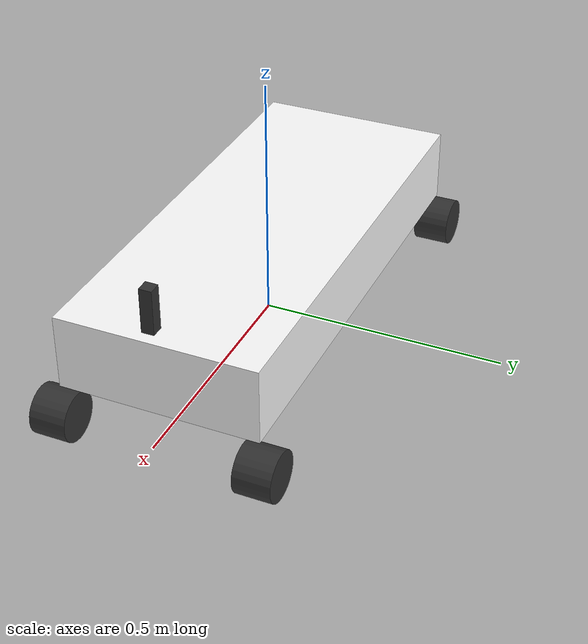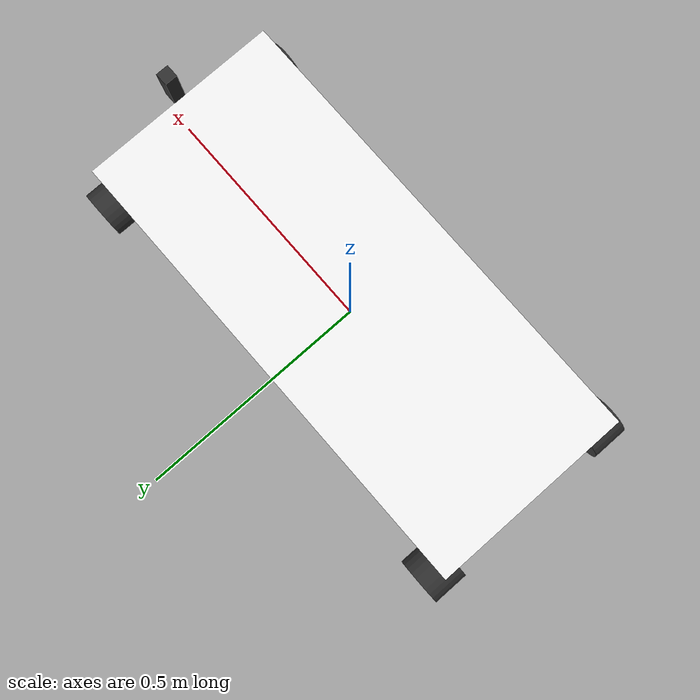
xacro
<?xml version="1.0"?>
<robot xmlns:xacro="http://www.ros.org/wiki/xacro" xmlns:gz="https://gazebosim.org" name="robot_3d">

    <xacro:property name="M_PI" value="3.1415926535897931" />

    <xacro:arg name="robot_name" default="robot_3d"/>
    <xacro:arg name="prefix" default=""/>
    <xacro:arg name="use_gazebo" default="false"/>

    <!-- Include components -->
    <xacro:include filename="../mech/robot_3d_base.urdf.xacro"/>
    <xacro:include filename="../mech/wheel.urdf.xacro"/>
    <xacro:include filename="../sensors/rgbd_camera.urdf.xacro"/>
    <xacro:include filename="../sensors/lidar.urdf.xacro"/>
    <xacro:include filename="../control/climberr.gazebo"/>

    <!-- Base frame -->
    <xacro:robot_3d_base prefix="$(arg prefix)"/>

    <!-- FRONT: Driven wheels (add joint type "continuous" or "revolute" and actuator/ros2_control) -->
    <xacro:wheel
      prefix="$(arg prefix)"
      side="front_left"
      driven="true"
      x_reflect="1"
      y_reflect="1"/>

    <xacro:wheel
      prefix="$(arg prefix)"
      side="front_right"
      driven="true"
      x_reflect="1"
      y_reflect="-1"/>

    <!-- REAR: Passive wheels (no actuator, joint can be fixed or continuous but not powered) -->
    <xacro:wheel
      prefix="$(arg prefix)"
      side="back_left"
      driven="true"
      x_reflect="-1"
      y_reflect="1"/>

    <xacro:wheel
      prefix="$(arg prefix)"
      side="back_right"
      driven="true"
      x_reflect="-1"
      y_reflect="-1"/>

    <!-- Sensors remain as-is -->
    <xacro:rgbd_camera
      prefix="$(arg prefix)"
      camera_name="cam_1"
      xyz_offset="0.105 0 0.03"
      rpy_offset="0 0 0"/>

    <xacro:lidar_sensor
      prefix="$(arg prefix)"
      parent="base_link"
      frame_id="laser_frame"
      xyz_offset="0 0 0.0825"
      rpy_offset="0 0 3.14"
      mesh_xyz_offset="0 0 0"
      mesh_rpy_offset="${-M_PI/2} 0 0"
      topic_name="scan"/>

    <!-- Gazebo friction for front wheels (powered) -->
    <gazebo reference='front_left_wheel_link'>
      <collision>
        <surface>
          <friction>
            <ode>
              <mu>1.5</mu>
              <mu2>0.0</mu2>
              <fdir1 gz:expressed_in="base_footprint">1 -1 0</fdir1>
            </ode>
          </friction>
        </surface>
      </collision>
    </gazebo>

    <gazebo reference='front_right_wheel_link'>
      <collision>
        <surface>
          <friction>
            <ode>
              <mu>1.5</mu>
              <mu2>0.0</mu2>
              <fdir1 gz:expressed_in="base_footprint">1 1 0</fdir1>
            </ode>
          </friction>
        </surface>
      </collision>
    </gazebo>

    <!-- Rear wheels: Lower friction or same as above (if needed) -->
    <gazebo reference='back_left_wheel_link'>
      <collision>
        <surface>
          <friction>
            <ode>
              <mu>1.5</mu>
              <mu2>0.0</mu2>
              <fdir1 gz:expressed_in="base_footprint">1 1 0</fdir1>
            </ode>
          </friction>
        </surface>
      </collision>
    </gazebo>
    <gazebo reference='back_right_wheel_link'>
      <collision>
        <surface>
          <friction>
            <ode>
              <mu>1.5</mu>
              <mu2>0.0</mu2>
              <fdir1 gz:expressed_in="base_footprint">1 -1 0</fdir1>
            </ode>
          </friction>
        </surface>
      </collision>
    </gazebo>

    <!-- Base link Gazebo settings -->
    <gazebo reference="base_link">
      <mu1>0.000002</mu1>
      <mu2>0.000002</mu2>
    </gazebo>
</robot>

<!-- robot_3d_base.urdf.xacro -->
<robot xmlns:xacro="http://www.ros.org/wiki/xacro">
<xacro:property name="total_width" value="0.5564" />
<xacro:property name="wheel_width" value="0.075" />
<xacro:property name="wheel_radius" value="0.05" />
<xacro:property name="total_height" value="0.2532" />
<xacro:property name="base_length" value="0.9528128146" />
<xacro:property name="centered_length" value="0.9528128146" />
<xacro:property name="base_x_offset" value="${(centered_length - base_length) / 2}" />
<xacro:property name="base_size_x" value="${base_length}" />
<xacro:property name="base_size_y" value="${total_width - (2 * wheel_width)}" />
<xacro:property name="base_size_z" value="${total_height - (2 * wheel_radius)}" />
<xacro:property name="base_mass" value="4.6" />

<xacro:macro name="robot_3d_base" params="prefix">
  <link name="${prefix}base_footprint"/>
  <link name="${prefix}base_link">
    <visual>
        <geometry>
            <box size="${base_size_x} ${base_size_y} ${base_size_z}"/>
        </geometry>
        <material name="white">
          <color rgba="1 1 1 1"/>
        </material>
        <origin xyz="${base_x_offset} 0 ${base_size_z/2 + wheel_radius/4}" rpy="0 0 0"/>
    </visual>
    <collision>
        <geometry>
            <box size="${base_size_x} ${base_size_y} ${base_size_z}"/>
        </geometry>
        <origin xyz="${base_x_offset} 0 ${base_size_z/2 + wheel_radius/4}" rpy="0 0 0"/>
    </collision>
    <inertial>
        <origin xyz="${base_x_offset} 0 ${base_size_z/2 + wheel_radius/4}" rpy="0 0 0"/>
        <mass value="${base_mass}"/>
        <inertia
            ixx="${(1/12) * base_mass * ((base_size_y * base_size_y) + (base_size_z * base_size_z))}" ixy="0.0" ixz="0.0"
            iyy="${(1/12) * base_mass * ((base_size_x * base_size_x) + (base_size_z * base_size_z))}" iyz="0.0"
            izz="${(1/12) * base_mass * ((base_size_x * base_size_x) + (base_size_y * base_size_y))}"/>
    </inertial>
  </link>
  <gazebo reference="${prefix}base_link">
    <visual>
        <material>
            <ambient>0 0.7 0 1</ambient>
            <diffuse>0 0.7 0 1</diffuse>
            <specular>0 0.7 0 1</specular>
        </material>
    </visual>
  </gazebo>
  <joint name="${prefix}base_joint" type="fixed">
    <parent link="${prefix}base_footprint"/>
    <child link="${prefix}base_link"/>
    <origin xyz="0 0 ${wheel_radius}" rpy="0 0 0"/>
  </joint>
</xacro:macro>
</robot>

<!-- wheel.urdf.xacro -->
<robot xmlns:xacro="http://www.ros.org/wiki/xacro">

  <xacro:property name="wheel_radius" value="0.05" />
  <xacro:property name="wheel_separation" value="0.4139" />
  <xacro:property name="wheel_width" value="0.075" />
  <xacro:property name="wheel_mass" value="9.1" />
  <xacro:property name="wheel_xoff" value="0.4764064073" />
  <xacro:property name="wheel_yoff" value="0" />

  <xacro:macro name="wheel" params="prefix side x_reflect y_reflect driven">
    <link name="${prefix}${side}_wheel_link">
      <visual>
        <origin xyz="0 0 0" rpy="${pi/2} 0 0"/>
        <geometry>
          <cylinder radius="${wheel_radius}" length="${wheel_width}"/>
        </geometry>
        <material name="dark_gray">
          <color rgba="0.2 0.2 0.2 1.0"/>
        </material>
      </visual>

      <collision>
        <origin xyz="0 0 0" rpy="${pi/2} 0 0"/>
        <geometry>
          <cylinder radius="${wheel_radius}" length="${wheel_width}"/>
        </geometry>
      </collision>

      <inertial>
        <origin xyz="0 0 0" rpy="0 0 0"/>
        <mass value="${wheel_mass}"/>
        <inertia
          ixx="${(wheel_mass/12.0) * (3*wheel_radius*wheel_radius + wheel_width*wheel_width)}" ixy="0" ixz="0"
          iyy="${(wheel_mass/2.0) * (wheel_radius*wheel_radius)}" iyz="0"
          izz="${(wheel_mass/12.0) * (3*wheel_radius*wheel_radius + wheel_width*wheel_width)}"/>
      </inertial>
    </link>

    <joint name="${prefix}${side}_wheel_joint" type="continuous">
      <axis xyz="0 1 0"/>
      <parent link="${prefix}base_link"/>
      <child link="${prefix}${side}_wheel_link"/>
      <origin xyz="${x_reflect*wheel_xoff} ${y_reflect*(wheel_separation/2+wheel_yoff)} ${-wheel_radius}" rpy="0 0 0"/>
    </joint>

    <gazebo reference="${prefix}${side}_wheel_link">
      <surface>
        <friction>
          <ode>
              <mu>1.0</mu>
              <mu2>0.0</mu2>
          </ode>
        </friction>
      </surface>
      <visual>
          <material>
              <ambient>0.2 0.2 0.2 1.0</ambient>
              <diffuse>0.2 0.2 0.2 1.0</diffuse>
              <specular>0.2 0.2 0.2 1.0</specular>
              <emissive>0.0 0.0 0.0 0.0</emissive>
          </material>
      </visual>
  </gazebo>

  </xacro:macro>
</robot>

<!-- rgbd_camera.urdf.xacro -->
<robot xmlns:xacro="http://www.ros.org/wiki/xacro">

  <xacro:property name="M_PI" value="3.1415926535897931" />

  <xacro:macro name="rgbd_camera" params="
    prefix:=''
    camera_name:='cam_1'
    parent:='base_link'
    xyz_offset:='0.4764064073 0 0.2407'
    rpy_offset:='0 -0.50 0'
    mesh_xyz_offset:='0 0 0'
    mesh_rpy_offset:='${M_PI/2} 0.0 ${M_PI/2}'
    collision_xyz_offset:='0 0 0'
    collision_rpy_offset:='0 0 0'
    inertial_xyz_offset:='0 0 0'
    inertial_rpy_offset:='0 0 0'
    optical_xyz_offset:='0 0 0'
    optical_rpy_offset:='${-M_PI/2} 0 ${-M_PI/2}'
    depth_frame_xyz_offset:='0 0 0'
    depth_frame_rpy_offset:='0 0 0'
    infra1_xyz_offset:='0 0 0'
    infra1_rpy_offset:='0 0 0'
    infra2_xyz_offset:='0 -0.05 0'
    infra2_rpy_offset:='0 0 0'
    color_xyz_offset:='0 0.015 0'
    color_rpy_offset:='0 0 0'
    cam_width:=0.090
    cam_height:=0.025
    cam_depth:=0.02505
    mass:=0.072
    ixx:=0.003881243
    ixy:=0.0
    ixz:=0.0
    iyy:=0.000498940
    iyz:=0.0
    izz:=0.003879257
    material_name:='aluminum'
    material_color:='0.2 0.2 0.2 1'
    horizontal_fov:=1.5184
    image_width:=424
    image_height:=240
    clip_near:=0.05
    clip_far:=1.5
    update_rate:=2
    always_on:=1
    visualize:=true
    enable_collision:=false">

    <link name="${prefix}${camera_name}_link">
      <visual>
        <origin xyz="${mesh_xyz_offset}" rpy="${mesh_rpy_offset}"/>
        <geometry>
          <box size="${cam_depth} ${cam_width} ${cam_height}"/>
        </geometry>
        <material name="${material_name}">
          <color rgba="${material_color}"/>
        </material>
      </visual>
      <xacro:if value="${enable_collision}">
        <collision>
          <origin xyz="${collision_xyz_offset}" rpy="${collision_rpy_offset}"/>
          <geometry>
            <box size="${cam_depth} ${cam_width} ${cam_height}"/>
          </geometry>
        </collision>
      </xacro:if>
      <inertial>
        <mass value="${mass}" />
        <origin xyz="${inertial_xyz_offset}" rpy="${inertial_rpy_offset}"/>
        <inertia ixx="${ixx}" ixy="${ixy}" ixz="${ixz}"
                 iyy="${iyy}" iyz="${iyz}" izz="${izz}" />
      </inertial>
    </link>

    <joint name="${prefix}${camera_name}_joint" type="fixed">
      <parent link="${prefix}${parent}"/>
      <child link="${prefix}${camera_name}_link" />
      <origin xyz="0.4764064073 0 0.2407" rpy="${rpy_offset}"/>
    </joint>

    <joint name="${prefix}${camera_name}_depth_joint" type="fixed">
      <origin xyz="${depth_frame_xyz_offset}" rpy="${depth_frame_rpy_offset}"/>
      <parent link="${prefix}${camera_name}_link"/>
      <child link="${prefix}${camera_name}_depth_frame" />
    </joint>
    <link name="${prefix}${camera_name}_depth_frame"/>

    <joint name="${prefix}${camera_name}_depth_optical_joint" type="fixed">
      <origin xyz="${optical_xyz_offset}" rpy="${optical_rpy_offset}" />
      <parent link="${prefix}${camera_name}_depth_frame" />
      <child link="${prefix}${camera_name}_depth_optical_frame" />
    </joint>
    <link name="${prefix}${camera_name}_depth_optical_frame"/>

    <joint name="${prefix}${camera_name}_infra1_joint" type="fixed">
      <origin xyz="${infra1_xyz_offset}" rpy="${infra1_rpy_offset}" />
      <parent link="${prefix}${camera_name}_link" />
      <child link="${prefix}${camera_name}_infra1_frame" />
    </joint>
    <link name="${prefix}${camera_name}_infra1_frame"/>

    <joint name="${prefix}${camera_name}_infra1_optical_joint" type="fixed">
      <origin xyz="${optical_xyz_offset}" rpy="${optical_rpy_offset}" />
      <parent link="${prefix}${camera_name}_infra1_frame" />
      <child link="${prefix}${camera_name}_infra1_optical_frame" />
    </joint>
    <link name="${prefix}${camera_name}_infra1_optical_frame"/>

    <joint name="${prefix}${camera_name}_infra2_joint" type="fixed">
      <origin xyz="${infra2_xyz_offset}" rpy="${infra2_rpy_offset}" />
      <parent link="${prefix}${camera_name}_link" />
      <child link="${prefix}${camera_name}_infra2_frame" />
    </joint>
    <link name="${prefix}${camera_name}_infra2_frame"/>

    <joint name="${prefix}${camera_name}_infra2_optical_joint" type="fixed">
      <origin xyz="${optical_xyz_offset}" rpy="${optical_rpy_offset}" />
      <parent link="${prefix}${camera_name}_infra2_frame" />
      <child link="${prefix}${camera_name}_infra2_optical_frame" />
    </joint>
    <link name="${prefix}${camera_name}_infra2_optical_frame"/>

    <joint name="${prefix}${camera_name}_color_joint" type="fixed">
      <origin xyz="${color_xyz_offset}" rpy="${color_rpy_offset}" />
      <parent link="${prefix}${camera_name}_link" />
      <child link="${prefix}${camera_name}_color_frame" />
    </joint>
    <link name="${prefix}${camera_name}_color_frame"/>

    <joint name="${prefix}${camera_name}_color_optical_joint" type="fixed">
      <origin xyz="${optical_xyz_offset}" rpy="${optical_rpy_offset}" />
      <parent link="${prefix}${camera_name}_color_frame" />
      <child link="${prefix}${camera_name}_color_optical_frame" />
    </joint>
    <link name="${prefix}${camera_name}_color_optical_frame"/>

    <gazebo reference="${prefix}${camera_name}_link">
      <sensor name="${prefix}${camera_name}" type="rgbd_camera">
        <camera>
          <horizontal_fov>${horizontal_fov}</horizontal_fov>
          <image>
            <width>${image_width}</width>
            <height>${image_height}</height>
          </image>
          <clip>
            <near>${clip_near}</near>
            <far>${clip_far}</far>
          </clip>
        </camera>
        <always_on>${always_on}</always_on>
        <gz_frame_id>${prefix}${camera_name}_link</gz_frame_id>
        <topic>${camera_name}</topic>
        <update_rate>${update_rate}</update_rate>
        <visualize>${visualize}</visualize>
      </sensor>
    </gazebo>

  </xacro:macro>
</robot>

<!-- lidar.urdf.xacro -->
<robot xmlns:xacro="http://www.ros.org/wiki/xacro">
  <xacro:property name="M_PI" value="3.1415926535897931" />

  <xacro:macro name="lidar_sensor" params="
    prefix:=''
    parent:='base_link'
    frame_id:='laser_frame'
    xyz_offset:='0 0 0.0825'
    rpy_offset:='0 0 0'
    mesh_xyz_offset:='0 0 0'
    mesh_rpy_offset:='${-M_PI/2} 0 0'
    mesh_scale:='0.001 0.001 0.001'
    collision_xyz_offset:='0 0 0'
    collision_rpy_offset:='0 0 0'
    inertial_xyz_offset:='0 0 0'
    inertial_rpy_offset:='0 0 0'
    lidar_width:=0.077
    lidar_height:=0.0398
    mass:=0.185
    material_name:='rplidar_black'
    material_color:='0.1 0.1 0.1 1'
    gazebo_material_ambient:='0.1 0.1 0.1 1'
    gazebo_material_diffuse:='0.1 0.1 0.1 1'
    gazebo_material_specular:='0.1 0.1 0.1 1'
    update_rate:=10
    ray_count:=720
    min_angle:='-3.14159'
    max_angle:='3.14159'
    min_range:='0.20'
    max_range:='30.0'
    range_resolution:='0.013'
    topic_name:='scan'
    always_on:=true
    visualize:=false
    enable_collision:=false">

    <xacro:property name="radius" value="${lidar_width/2}" />
    <xacro:property name="ixx_iyy" value="${(mass/12) * (3 * radius * radius + lidar_height * lidar_height)}" />
    <xacro:property name="izz" value="${(mass/2) * (radius * radius)}" />

    <link name="${prefix}${frame_id}">
      <visual>
        <origin xyz="${mesh_xyz_offset}" rpy="${mesh_rpy_offset}"/>
        <geometry>
          <cylinder radius="${lidar_width/2}" length="${lidar_height}"/>
        </geometry>
        <material name="${material_name}">
          <color rgba="${material_color}"/>
        </material>
      </visual>

      <xacro:if value="${enable_collision}">
        <collision>
          <origin xyz="${collision_xyz_offset}" rpy="${collision_rpy_offset}"/>
          <geometry>
            <cylinder radius="${lidar_width/2}" length="${lidar_height}"/>
          </geometry>
        </collision>
      </xacro:if>

      <inertial>
        <mass value="${mass}" />
        <origin xyz="${inertial_xyz_offset}" rpy="${inertial_rpy_offset}"/>
        <inertia
          ixx="${ixx_iyy}"
          ixy="0.0"
          ixz="0.0"
          iyy="${ixx_iyy}"
          iyz="0.0"
          izz="${izz}" />
      </inertial>
    </link>

    <joint name="${prefix}${frame_id}_joint" type="fixed">
      <parent link="${prefix}${parent}"/>
      <child link="${prefix}${frame_id}" />
      <origin xyz="${xyz_offset}" rpy="${rpy_offset}"/>
    </joint>

    <gazebo reference="${prefix}${frame_id}">
      <material>
        <ambient>${gazebo_material_ambient}</ambient>
        <diffuse>${gazebo_material_diffuse}</diffuse>
        <specular>${gazebo_material_specular}</specular>
      </material>
      <sensor name="${prefix}lidar_sensor" type="gpu_lidar">
        <topic>${topic_name}</topic>
        <update_rate>${update_rate}</update_rate>
        <always_on>${always_on}</always_on>
        <visualize>${visualize}</visualize>
        <ray>
          <scan>
            <horizontal>
              <samples>${ray_count}</samples>
              <resolution>1</resolution>
              <min_angle>${min_angle}</min_angle>
              <max_angle>${max_angle}</max_angle>
            </horizontal>
            <vertical>
              <samples>1</samples>
              <resolution>1</resolution>
              <min_angle>0</min_angle>
              <max_angle>0</max_angle>
            </vertical>
          </scan>
          <range>
            <min>${min_range}</min>
            <max>${max_range}</max>
            <resolution>${range_resolution}</resolution>
          </range>
        </ray>
        <gz_frame_id>${prefix}${frame_id}</gz_frame_id>
      </sensor>
    </gazebo>
  </xacro:macro>
</robot>
